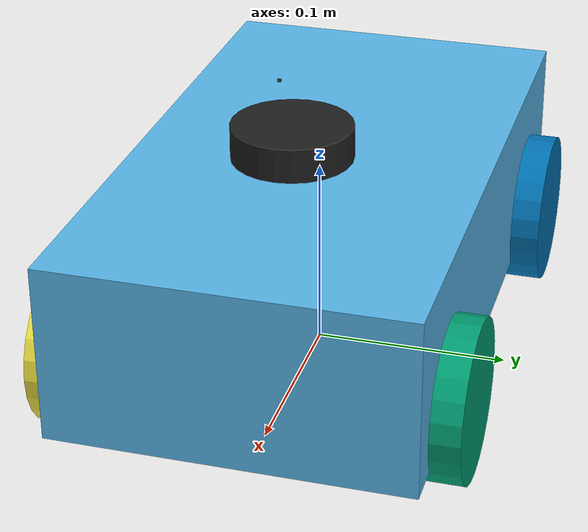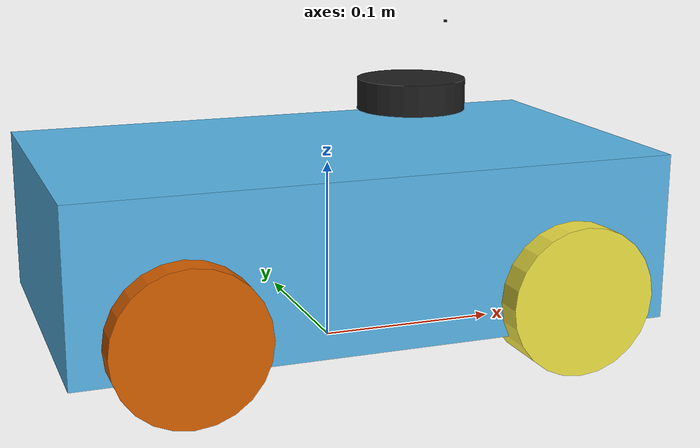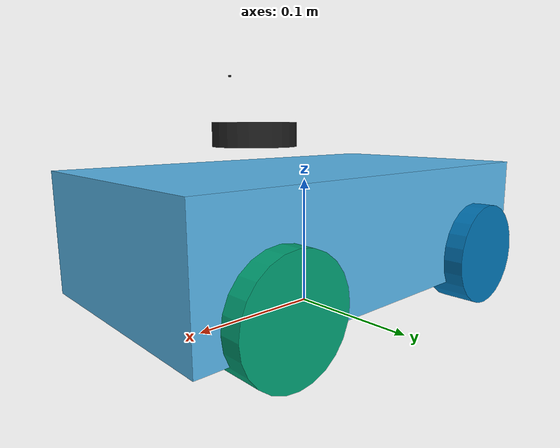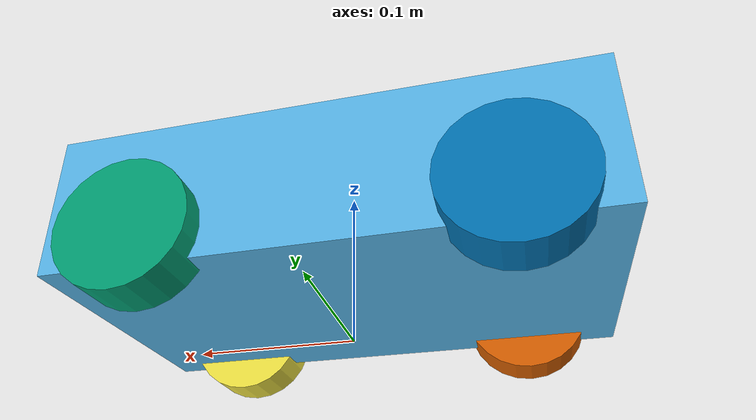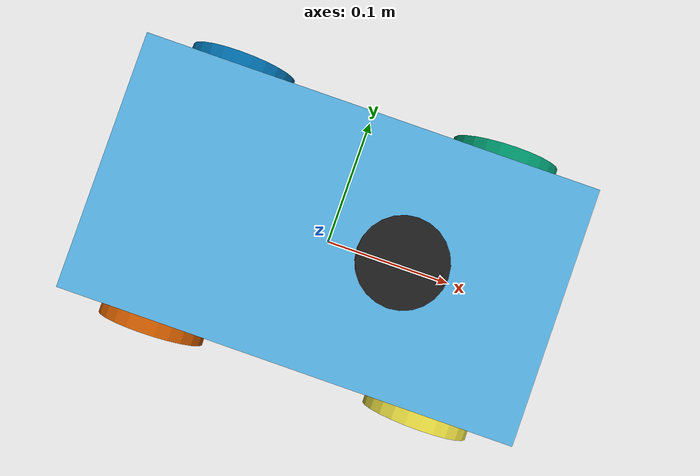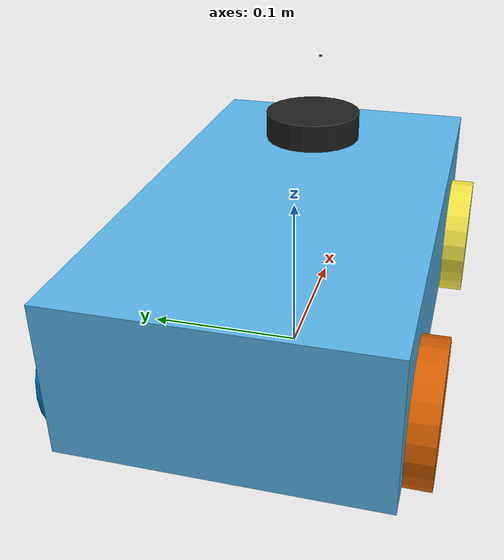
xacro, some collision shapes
<?xml version='1.0'?>

<robot name="aibot" xmlns:xacro="http://ros.org/wiki/xacro">

  <link name='base_link' />

  <link name='base_footprint'>

    <visual name='base_footprint_visual'>
      <origin xyz="0 0 0" rpy="0 1.57 3.14"/>
      <geometry>
        <mesh filename="package://aibot_description/meshes/myagv/car_body.stl" scale="0.001 0.001 0.001"/>
      </geometry>
    </visual>

    <collision name='collision_body'>
    <origin xyz="0 0 0.045" rpy="0 0 0"/>
      <geometry>
        <box size="0.32 0.18 0.09"/>
      </geometry>
    </collision>

    <collision name='collision_head'>
     <origin xyz="0.045 0 0.055" rpy="0 0 0"/>
      <geometry>
        <box size="0.12 0.1 0.11"/>
      </geometry>
    </collision>

  </link>

  <joint name="base_footprint_joint" type="fixed" >
    <origin xyz="0 0 0.021" rpy="0 0 0"/>
    <child link="base_footprint"/>
    <parent link="base_link"/>
  </joint>

  <link name="front_left_wheel">

    <visual name="front_left_wheel_visual">
      <origin xyz="0 0 0" rpy="0 1.5707 1.5707"/>
      <geometry>
        <cylinder radius="0.04" length="0.03"/>
      </geometry>
    </visual>

    <collision name="collision_front_left_wheel">
      <origin xyz="0 0 0" rpy="0 1.5707 1.5707"/>
      <geometry>
        <cylinder radius="0.04" length="0.03"/>
      </geometry>
    </collision>

  </link>

  <link name="front_right_wheel">

    <visual name="front_right_wheel_visual">
      <origin xyz="0 0 0.0" rpy="0 1.5707 1.5707"/>
      <geometry>
        <cylinder radius="0.04" length="0.03"/>
      </geometry>
    </visual>

    <collision name="collision_front_right_wheel">
      <origin xyz="0 0 0" rpy="0 1.5707 1.5707"/>
      <geometry>
        <cylinder radius="0.04" length="0.03"/>
      </geometry>
    </collision>

  </link>

  <joint name="front_left_wheel_hinge" type="fixed">
    <origin xyz="0.1035 0.09 0.019" rpy="0 0 0"/>
    <child link="front_left_wheel"/>
    <parent link="base_footprint"/>
    <axis xyz="0 1 0" rpy="0 0 0"/>
    <limit effort="10000" velocity="1000"/>
    <joint_properties damping="1.0" friction="1.0"/>
  </joint>

  <joint name="front_right_wheel_hinge" type="fixed">
    <origin xyz="0.1035 -0.09 0.019" rpy="0 0 0"/>
    <child link="front_right_wheel"/>
    <parent link="base_footprint"/>
    <axis xyz="0 1 0" rpy="0 0 0"/>
    <limit effort="10000" velocity="1000"/>
    <joint_properties damping="1.0" friction="1.0"/>
  </joint>

  <link name="rear_left_wheel">

    <visual name="rear_left_wheel_visual">
      <origin xyz="0 0 0" rpy="0 1.5707 1.5707"/>
      <geometry>
        <cylinder radius="0.04" length="0.03"/>
      </geometry>
    </visual>

    <collision name="collision_rear_left_wheel">
      <origin xyz="0 0 0" rpy="0 1.5707 1.5707"/>
      <geometry>
        <cylinder radius="0.04" length="0.03"/>
      </geometry>
    </collision>

  </link>

  <link name="rear_right_wheel">

    <visual name="rear_right_wheel_visual">
      <origin xyz="0 0 0" rpy="0 1.5707 1.5707"/>
      <geometry>
        <cylinder radius="0.04" length="0.03"/>
      </geometry>
    </visual>

    <collision name="collision_rear_right_wheel">
      <origin xyz="0 0 0" rpy="0 1.5707 1.5707"/>
      <geometry>
        <cylinder radius="0.04" length="0.03"/>
      </geometry>
    </collision>

  </link>

  <joint name="rear_left_wheel_hinge" type="fixed">
    <origin xyz="-0.1035 0.09 0.019" rpy="0 0 0"/>
    <child link="rear_left_wheel"/>
    <parent link="base_footprint"/>
    <axis xyz="0 1 0" rpy="0 0 0"/>
    <limit effort="10000" velocity="1000"/>
    <joint_properties damping="1.0" friction="1.0"/>
  </joint>

  <joint name="rear_right_wheel_hinge" type="fixed">
    <origin xyz="-0.1035 -0.09 0.019" rpy="0 0 0"/>
    <child link="rear_right_wheel"/>
    <parent link="base_footprint"/>
    <axis xyz="0 1 0" rpy="0 0 0"/>
    <limit effort="10000" velocity="1000"/>
    <joint_properties damping="1.0" friction="1.0"/>
  </joint>

  <link name="camera">

    <visual name="camera_visual">
      <origin xyz="0 0 0" rpy="0 0 0"/>
      <geometry>
        <cylinder radius="0.005" length="0.005"/>
      </geometry>
      <material name="black"/>
    </visual>

    <collision name="collision_camera">
      <origin xyz="0 0 0" rpy="0 0 0"/>
      <geometry>
        <cylinder radius="0.005" length="0.005"/>
      </geometry>
    </collision>

  </link>

  <joint name="camera_joint" type="fixed">
    <origin xyz=".1488 0 0.0547" rpy="1.57 0 1.57"/>
    <parent link="base_footprint"/>
    <child link="camera"/>
  </joint>

  <link name="laser">

    <visual name="laser_visual">
      <origin xyz="0 0 0" rpy="0 0 0"/>
      <geometry>
        <cylinder radius="0.03" length="0.017"/>
      </geometry>
      <material name="green_black"/>
    </visual>

    <collision name="collision_laser">
      <origin xyz="0 0 0" rpy="0 0 0"/>
      <geometry>
        <cylinder radius="0.03" length="0.017"/>
      </geometry>
    </collision>

  </link>

  <joint name="laser_joint" type="fixed">
    <axis xyz="0 1 0" />
    <origin xyz=".0493 0 0.115" rpy="0 0 3.14"/>
    <parent link="base_footprint"/>
    <child link="laser"/>
  </joint>

  <link name="imu_link">

    <visual name="imu_visual">
      <origin xyz="0 0 0" rpy="0 0 0"/>
      <geometry>
        <cylinder radius="0.001" length="0.001"/>
      </geometry>
      <material name="black"/>
    </visual>

  </link>

  <joint name="imu_joint" type="fixed">
    <origin xyz="-0.035 -0.01 0.0216" rpy="0 0 0"/>
    <parent link="base_footprint"/>
    <child link="imu_link"/>
  </joint>

  <link name="extend_back_link">
    <visual name="extend_visual">
      <origin xyz="0 0 0" rpy="0 0 0"/>
      <geometry>
        <cylinder radius="0.001" length="0.001"/>
      </geometry>
      <material name="green_black"/>
    </visual>
  </link>

  <joint name="extend_back_link_joint" type="fixed">
    <origin xyz="-0.0705 0 0.084" rpy="0 0 0"/>
    <parent link="base_footprint"/>
    <child link="extend_back_link"/>
  </joint>

  <link name="extend_front_link">

    <visual name="extend_visual">
      <origin xyz="0 0 0" rpy="0 0 0"/>
      <geometry>
        <cylinder radius="0.001" length="0.001"/>
      </geometry>
      <material name="green_black"/>
    </visual>

  </link>

  <joint name="extend_front_link_joint" type="fixed">
    <origin xyz="0.0695 0 0.154" rpy="0 0 0"/>
    <parent link="base_footprint"/>
    <child link="extend_front_link"/>
  </joint>

</robot>
